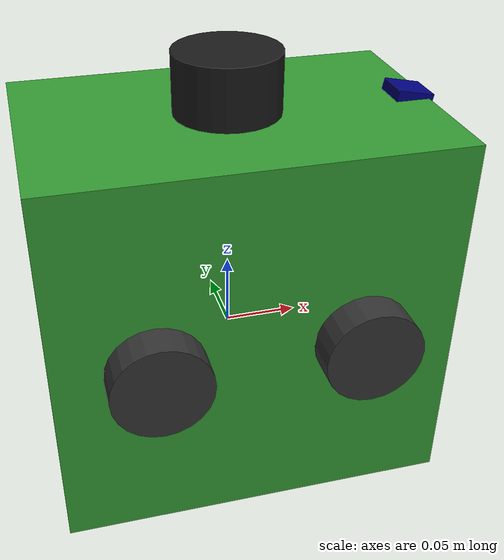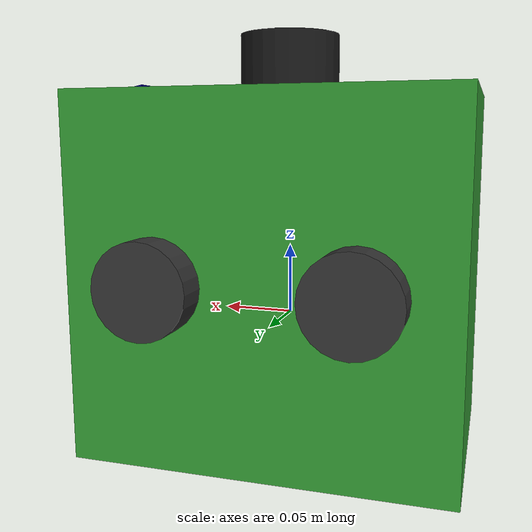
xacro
<?xml version="1.0"?>
<!--
  AGROVER MR 25.26 — Description URDF
  Rover skid-steer 4 roues
  !! Ajuster les dimensions selon le robot physique !!
-->
<robot name="agrover" xmlns:xacro="http://www.ros.org/wiki/xacro">

  <!-- ── Paramètres géométriques (À MESURER) ─────────────────── -->
  <xacro:property name="base_length"  value="0.265"/>   <!-- longueur chassis (m) -->
  <xacro:property name="base_width"   value="0.174"/>   <!-- largeur chassis (m) -->
  <xacro:property name="base_height"  value="0.255"/>   <!-- hauteur chassis (m) -->
  <xacro:property name="wheel_radius" value="0.0325"/>   <!-- rayon roue (m) -->
  <xacro:property name="wheel_width"  value="0.065"/>   <!-- largeur roue (m) -->
  <xacro:property name="track_width"  value="0.155"/>   <!-- voie (m) -->
  <xacro:property name="wheelbase"    value="0.135"/>   <!-- empattement (m) -->
  <xacro:property name="base_mass"    value="5.0"/>    <!-- masse chassis (kg) -->
  <xacro:property name="wheel_mass"   value="0.5"/>    <!-- masse roue (kg) -->

  <!-- ── Macro inertie ────────────────────────────────────────── -->
  <xacro:macro name="box_inertia" params="m l w h">
    <inertial>
      <mass value="${m}"/>
      <inertia ixx="${m*(w*w+h*h)/12}" ixy="0" ixz="0"
               iyy="${m*(l*l+h*h)/12}" iyz="0"
               izz="${m*(l*l+w*w)/12}"/>
    </inertial>
  </xacro:macro>

  <xacro:macro name="cylinder_inertia" params="m r h">
    <inertial>
      <mass value="${m}"/>
      <inertia ixx="${m*(3*r*r+h*h)/12}" ixy="0" ixz="0"
               iyy="${m*(3*r*r+h*h)/12}" iyz="0"
               izz="${m*r*r/2}"/>
    </inertial>
  </xacro:macro>

  <!--  BASE LINK (châssis)                                       -->
  <link name="base_footprint"/>

  <joint name="base_footprint_joint" type="fixed">
    <parent link="base_footprint"/>
    <child  link="base_link"/>
    <origin xyz="0 0 ${wheel_radius}" rpy="0 0 0"/>
  </joint>

  <link name="base_link">
    <visual>
      <geometry>
        <box size="${base_length} ${base_width} ${base_height}"/>
      </geometry>
      <material name="green">
        <color rgba="0.2 0.6 0.2 1.0"/>
      </material>
    </visual>
    <collision>
      <geometry>
        <box size="${base_length} ${base_width} ${base_height}"/>
      </geometry>
    </collision>
    <xacro:box_inertia m="${base_mass}"
                       l="${base_length}"
                       w="${base_width}"
                       h="${base_height}"/>
  </link>

  <!--  MACRO ROUE                                                -->
  <xacro:macro name="wheel" params="name x y">
    <link name="${name}_wheel">
      <visual>
        <geometry>
          <cylinder radius="${wheel_radius}" length="${wheel_width}"/>
        </geometry>
        <material name="dark_grey">
          <color rgba="0.2 0.2 0.2 1.0"/>
        </material>
      </visual>
      <collision>
        <geometry>
          <cylinder radius="${wheel_radius}" length="${wheel_width}"/>
        </geometry>
      </collision>
      <xacro:cylinder_inertia m="${wheel_mass}"
                               r="${wheel_radius}"
                               h="${wheel_width}"/>
    </link>

    <joint name="${name}_wheel_joint" type="continuous">
      <parent link="base_link"/>
      <child  link="${name}_wheel"/>
      <origin xyz="${x} ${y} 0" rpy="${pi/2} 0 0"/>
      <axis xyz="0 0 1"/>
    </joint>
  </xacro:macro>

  <!-- Instanciation des 4 roues -->
  <xacro:wheel name="front_left"  x=" ${wheelbase/2}" y=" ${track_width/2}"/>
  <xacro:wheel name="front_right" x=" ${wheelbase/2}" y="-${track_width/2}"/>
  <xacro:wheel name="rear_left"   x="-${wheelbase/2}" y=" ${track_width/2}"/>
  <xacro:wheel name="rear_right"  x="-${wheelbase/2}" y="-${track_width/2}"/>

  <!--  LIDAR — RPLIDAR A1                                        -->
  <link name="laser_link">
    <visual>
      <geometry>
        <cylinder radius="0.035" length="0.04"/>
      </geometry>
      <material name="black">
        <color rgba="0.1 0.1 0.1 1.0"/>
      </material>
    </visual>
    <collision>
      <geometry>
        <cylinder radius="0.035" length="0.04"/>
      </geometry>
    </collision>
    <inertial>
      <mass value="0.17"/>
      <inertia ixx="0.0001" ixy="0" ixz="0"
               iyy="0.0001" iyz="0"
               izz="0.0001"/>
    </inertial>
  </link>

  <joint name="laser_joint" type="fixed">
    <parent link="base_link"/>
    <child  link="laser_link"/>
    <!-- Positionner le LiDAR au sommet du chassis, centré -->
    <origin xyz="0.0 0.0 ${base_height/2 + 0.02}" rpy="0 0 0"/>
  </joint>

  <!--  CAMÉRA — Pi Camera v2                                     -->
  <link name="camera_link">
    <visual>
      <geometry>
        <box size="0.025 0.025 0.01"/>
      </geometry>
      <material name="dark_blue">
        <color rgba="0.0 0.0 0.5 1.0"/>
      </material>
    </visual>
    <inertial>
      <mass value="0.03"/>
      <inertia ixx="0.00001" ixy="0" ixz="0"
               iyy="0.00001" iyz="0"
               izz="0.00001"/>
    </inertial>
  </link>

  <joint name="camera_joint" type="fixed">
    <parent link="base_link"/>
    <child  link="camera_link"/>
    <!-- Caméra à l'avant du chassis, légèrement inclinée vers le bas -->
    <origin xyz="${base_length/2 - 0.01} 0.0 ${base_height/2}"
            rpy="0 0.2 0"/>
  </joint>

  <!-- Frame optique de la caméra (convention ROS: Z en avant) -->
  <link name="camera_optical_frame"/>
  <joint name="camera_optical_joint" type="fixed">
    <parent link="camera_link"/>
    <child  link="camera_optical_frame"/>
    <origin xyz="0 0 0" rpy="${-pi/2} 0 ${-pi/2}"/>
  </joint>

  <!--  PLUGIN GAZEBO (simulation, optionnel)                     -->
  <gazebo>
    <plugin name="skid_steer_drive"
            filename="libgazebo_ros_diff_drive.so">
      <num_wheel_pairs>2</num_wheel_pairs>
      <left_joint>front_left_wheel_joint</left_joint>
      <left_joint>rear_left_wheel_joint</left_joint>
      <right_joint>front_right_wheel_joint</right_joint>
      <right_joint>rear_right_wheel_joint</right_joint>
      <wheel_separation>${track_width}</wheel_separation>
      <wheel_diameter>${2*wheel_radius}</wheel_diameter>
      <max_wheel_torque>20</max_wheel_torque>
      <max_wheel_acceleration>1.0</max_wheel_acceleration>
      <publish_odom>true</publish_odom>
      <publish_odom_tf>false</publish_odom_tf>
      <publish_wheel_tf>false</publish_wheel_tf>
      <odometry_frame>odom</odometry_frame>
      <robot_base_frame>base_link</robot_base_frame>
    </plugin>
  </gazebo>

  <gazebo reference="laser_link">
    <sensor type="ray" name="rplidar_a1">
      <ray>
        <scan>
          <horizontal>
            <samples>360</samples>
            <resolution>1</resolution>
            <min_angle>-3.14159</min_angle>
            <max_angle>3.14159</max_angle>
          </horizontal>
        </scan>
        <range>
          <min>0.12</min>
          <max>8.0</max>
          <resolution>0.01</resolution>
        </range>
      </ray>
      <plugin name="gazebo_ros_laser"
              filename="libgazebo_ros_ray_sensor.so">
        <output_type>sensor_msgs/LaserScan</output_type>
        <frame_name>laser_link</frame_name>
        <topicName>/scan</topicName>
      </plugin>
    </sensor>
  </gazebo>

</robot>
